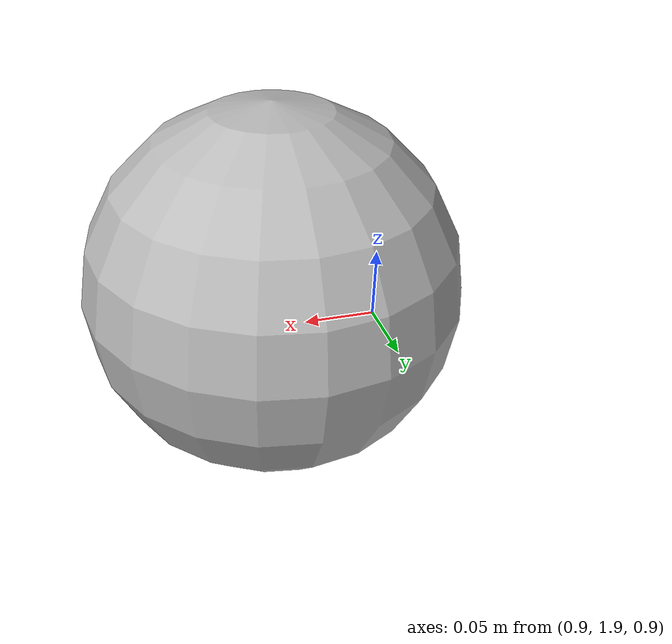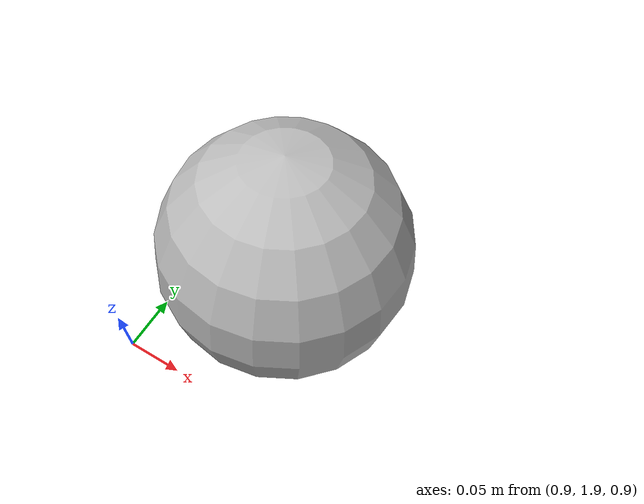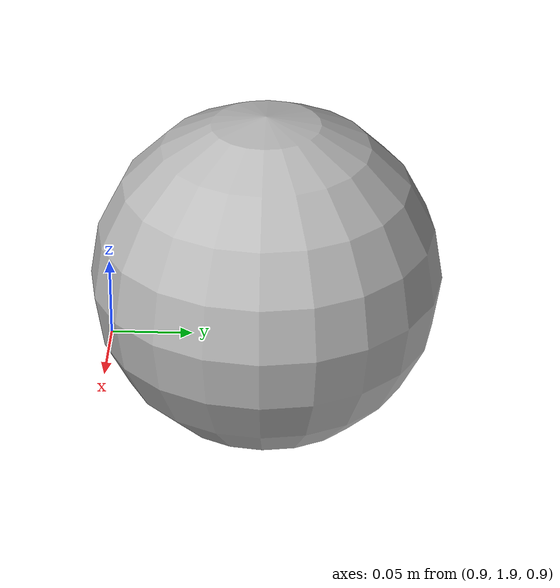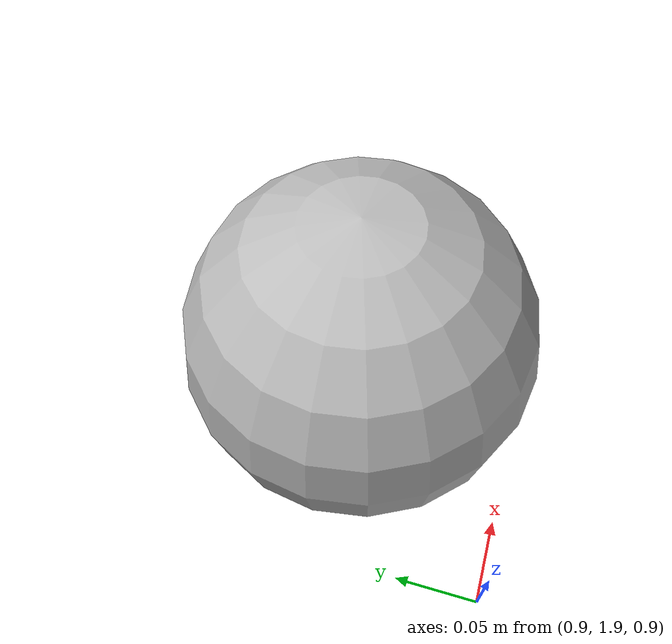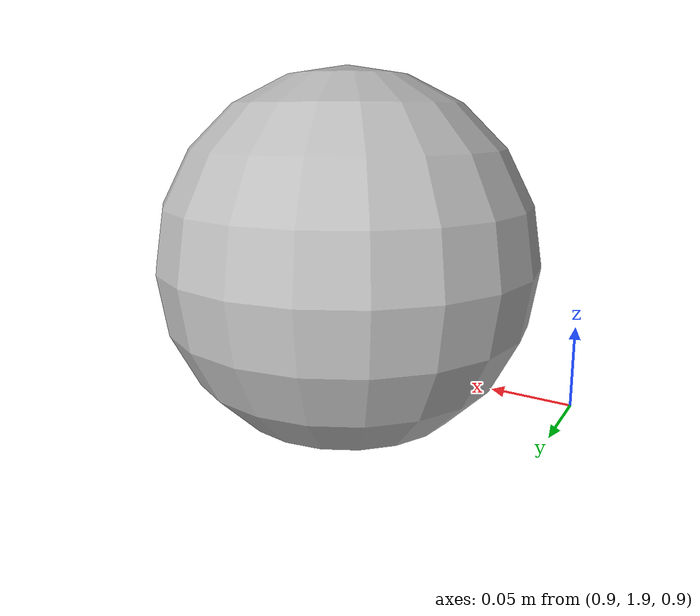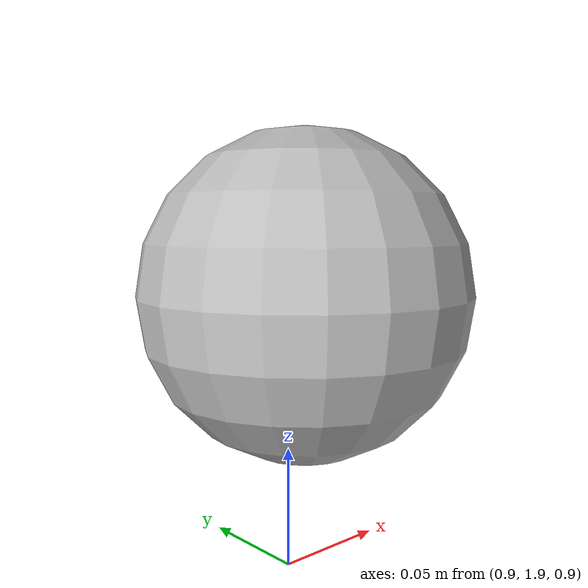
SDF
<?xml version="1.0" ?>

<sdf version="1.6">
  <model name="sphere">
    <pose>1 2 1 0 0 0</pose>
    <link name="sphere">
        <pose>0 0 0 0 0 0</pose>
        <collision name='collision'>
        <geometry>
        <sphere>
            <radius>0.1</radius>
        </sphere>
        </geometry>
        </collision>
        <visual name="visual">
            <geometry>
                <sphere>
                <radius>0.1</radius>
                </sphere>
            </geometry>
        </visual>
    </link>
  </model>
</sdf>
